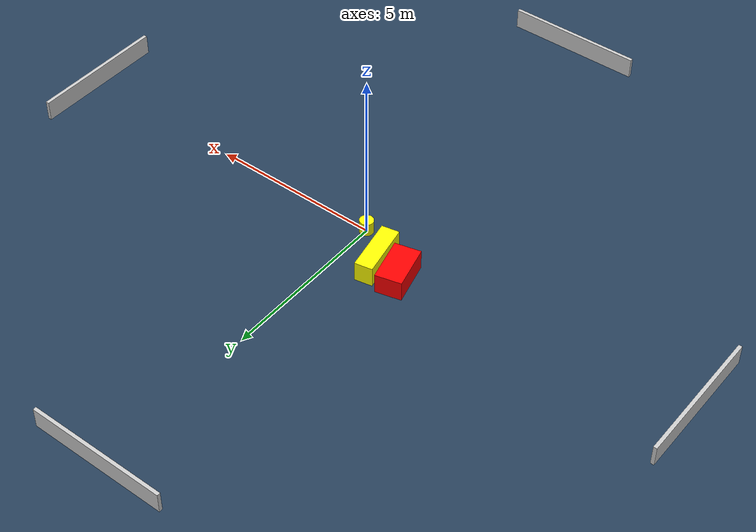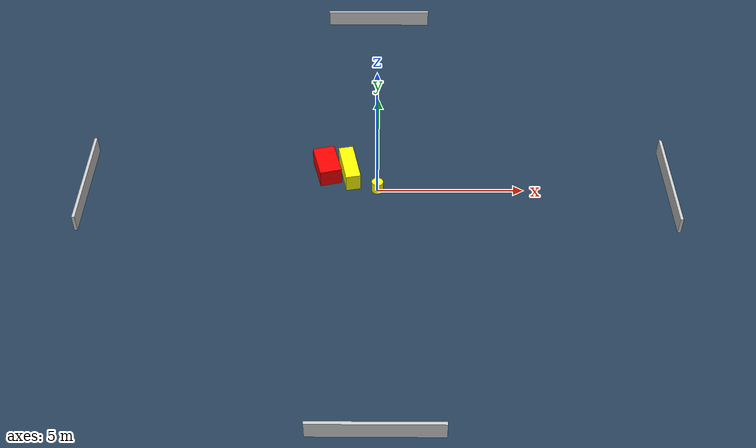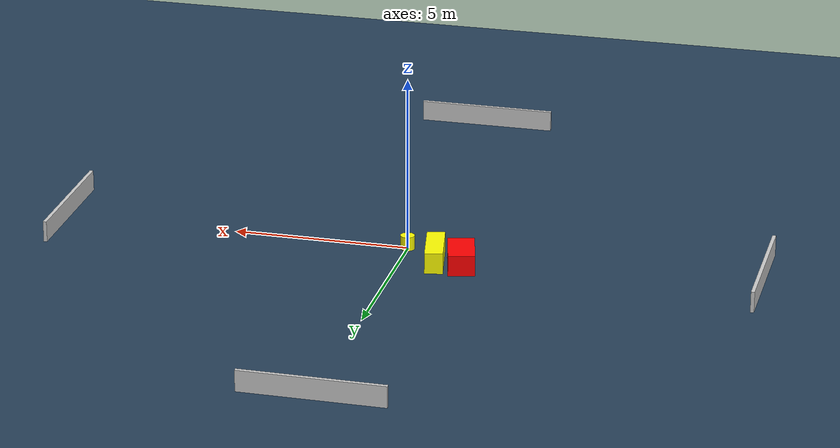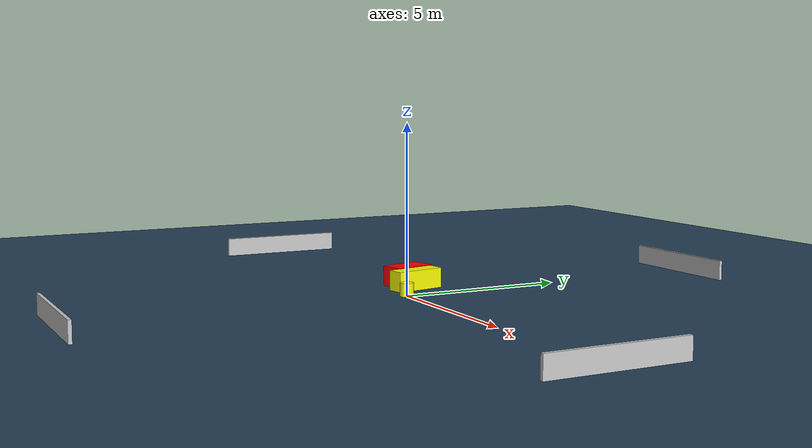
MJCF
<?xml version="1.0" ?>
<mujoco model="generated_environment">
  <option timestep="0.01" integrator="RK4" cone="elliptic"/>
  <default>
    <geom density="1"/>
  </default>
  <asset>
    <texture builtin="gradient" height="3072" name="skybox" rgb1="0.3 0.5 0.7" rgb2="0 0 0" type="skybox" width="512"/>
    <texture builtin="checker" height="300" name="groundplane" rgb1="0.2 0.3 0.4" rgb2="0.1 0.2 0.3" type="2d" width="300"/>
    <material name="groundplane" reflectance="0.2" texrepeat="5 5" texture="groundplane"/>
  </asset>
  <worldbody>
    <light dir="0 0 -1" directional="true" pos="0 0 1.5"/>
    <geom condim="3" friction="0.5 0.005 0.001" material="groundplane" name="floor" pos="0 0 0" size="0 0 0.05" type="plane"/>
    <body name="walls">
      <geom name="wall_1" condim="4" pos="-10.0 0.0 0.3" rgba="0.800000011920929 0.800000011920929 0.800000011920929 1.0" size="0.05 2.0 0.3" type="box"/>
      <geom name="wall_2" condim="4" pos="10.0 0.0 0.3" rgba="0.800000011920929 0.800000011920929 0.800000011920929 1.0" size="0.05 2.0 0.3" type="box"/>
      <geom name="wall_3" condim="4" pos="0.0 -10.0 0.3" rgba="0.800000011920929 0.800000011920929 0.800000011920929 1.0" size="2.0 0.05 0.3" type="box"/>
      <geom name="wall_4" condim="4" pos="0.0 10.0 0.3" rgba="0.800000011920929 0.800000011920929 0.800000011920929 1.0" size="2.0 0.05 0.3" type="box"/>
    </body>
    <body name="robot">
      <joint name="joint_x" type="slide" pos="0 0 0" axis="1 0 0"/>
      <joint name="joint_y" type="slide" pos="0 0 0" axis="0 1 0"/>
      <geom name="robot" type="cylinder" pos="0.0 0.0 0.2" size="0.2 0.2 0.0" mass="5.0" friction="1.0 0.005 0.0001" condim="4" rgba="1.0 1.0 0.0 1.0"/>
    </body>
    <body name="obstacle_1_movable">
      <geom name="obstacle_1_movable" condim="4" pos="-0.976161988978854 0.7985174433109412 0.3" euler="0 0 11.029403529803204" friction="0.0 0.005 0.001" rgba="1.0 1.0 0.0 1.0" size="0.25537535459358846 0.7785634177214755 0.3" type="box" mass="0.1"/>
      <joint type="free"/>
    </body>
    <body name="obstacle_2_static">
      <geom name="obstacle_2_static" condim="4" pos="-1.7532879696116406 0.920666558673297 0.3" euler="0 0 194.05442417589168" friction="0.0 0.005 0.001" rgba="1.0 0.0 0.0 1.0" size="0.37626917589122005 0.6429175432889076 0.3" type="box"/>
    </body>
  </worldbody>
  <actuator>
    <motor name="actuator_x" joint="joint_x" gear="1" ctrlrange="-1 1"/>
    <motor name="actuator_y" joint="joint_y" gear="1" ctrlrange="-1 1"/>
  </actuator>
</mujoco>
